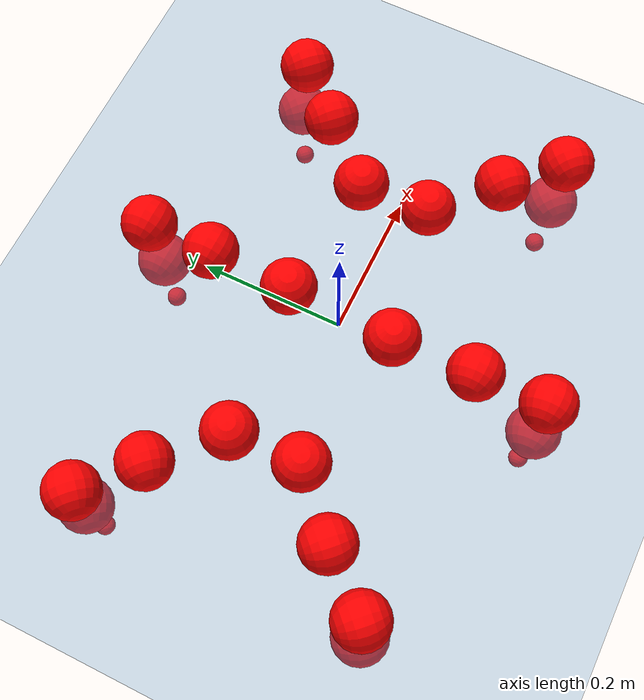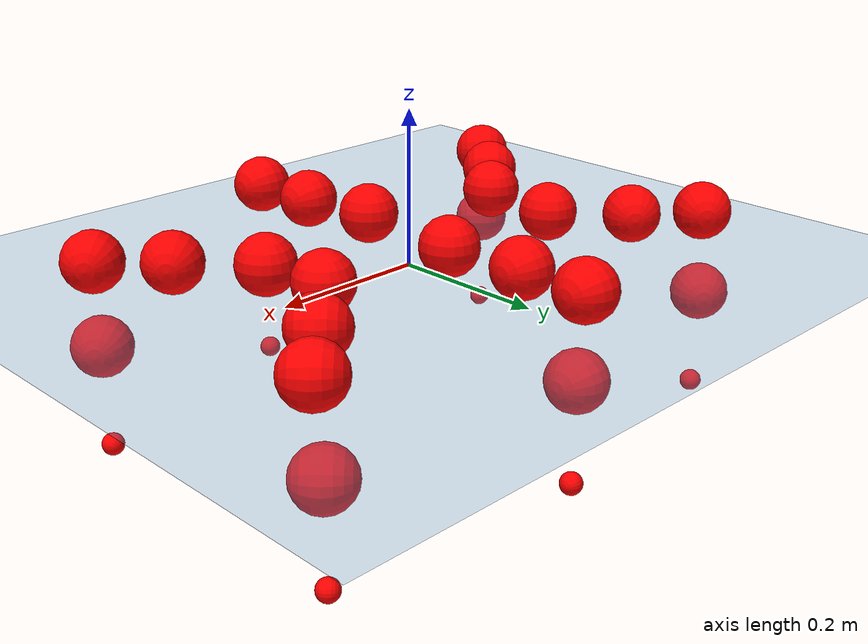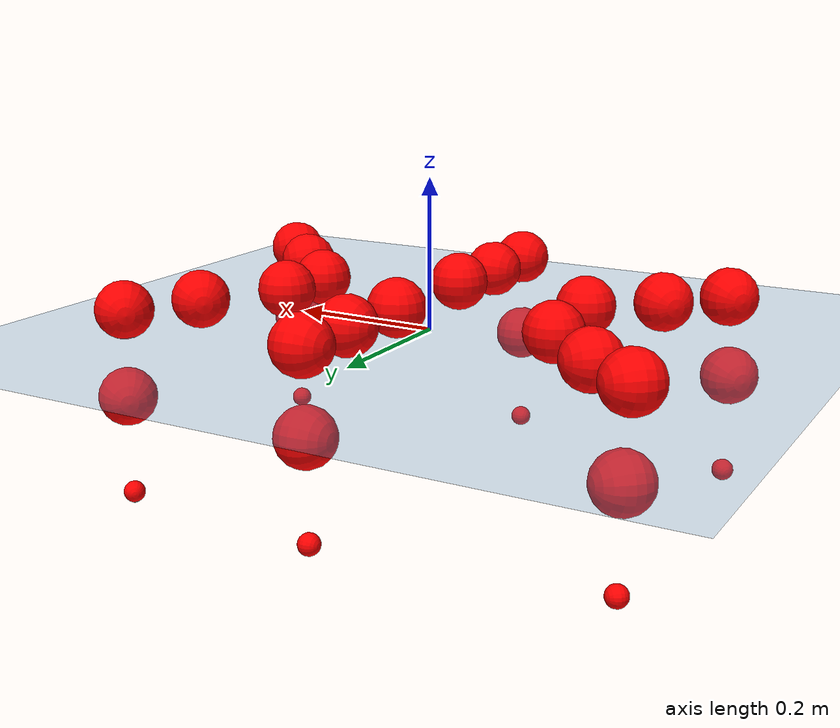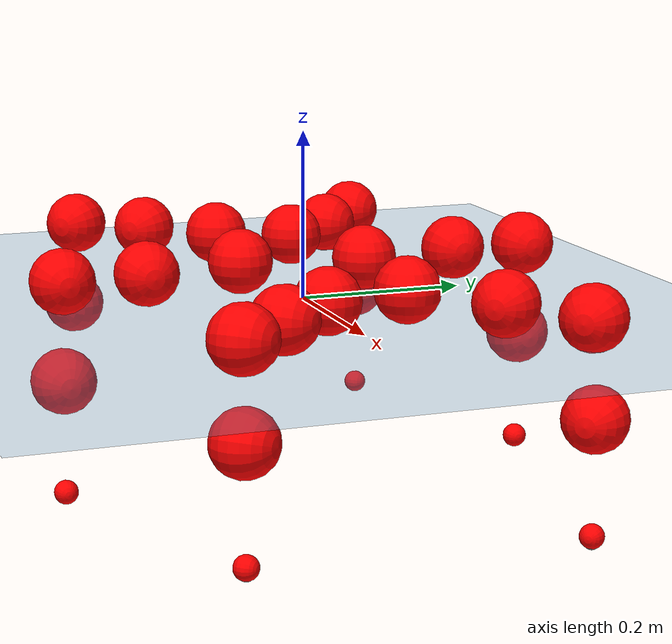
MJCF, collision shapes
<mujoco model="Golem">
  <compiler angle="radian" assetdir="assets" balanceinertia="true" inertiafromgeom="false"/>

  <option timestep="0.005" density="1.2" viscosity="2e-05"/>

  <size nkey="1"/>

  <visual>
    <quality shadowsize="8192"/>
    <map shadowclip="0.5"/>
  </visual>

  <default>
    <default class="/">
      <joint armature="0.01" damping="0.01" frictionloss="0.01"/>
      <geom contype="0" conaffinity="0" group="1" solref="-1000 -80"/>
      <site size="0.01 0.005 0.005" group="5"/>
      <general forcelimited="true" biastype="affine" gainprm="25" biasprm="0 -25 -0.5"/>
      <default class="visual">
        <geom type="mesh" group="2"/>
      </default>
      <default class="collision">
        <geom group="3"/>
      </default>
      <default class="foot">
        <geom size="0.01 0 0" condim="6" group="4" priority="1" solimp="0.015 1 0.01"/>
      </default>
      <default class="reward_collision_sphere">
        <geom group="5" rgba="1 0 0 1"/>
      </default>
    </default>
  </default>

  <asset>
    <texture type="skybox" colorspace="auto" name="//unnamed_texture_0" builtin="gradient" rgb1="0.95 0.95 0.95" rgb2="0.95 0.95 0.95" width="100" height="600"/>
    <texture type="2d" colorspace="auto" name="texplane" builtin="checker" rgb1="0.345 0.575 0.748" rgb2="0.345 0.575 0.748" markrgb="1 1 1" width="512" height="512"/>
    <material name="MatPlane" class="/" texture="texplane" texuniform="true" texrepeat="2 2" specular="0.9"/>
    <mesh name="body" class="/" file="body.stl" scale="0.001 0.001 0.001"/>
    <mesh name="coxa" class="/" file="coxa.stl" scale="0.001 0.001 0.001"/>
    <mesh name="femur" class="/" file="femur.stl" scale="0.001 0.001 0.001"/>
    <mesh name="tibia" class="/" file="tibia.stl" scale="0.001 0.001 0.001"/>
    <mesh name="tarsus" class="/" file="tarsus.stl" scale="0.001 0.001 0.001"/>
  </asset>

  <worldbody>
    <geom name="floor" class="/" size="100 100 0.125" type="plane" group="0" material="MatPlane"/>
    <light name="toplight_shadow" class="/" pos="0 0 5" dir="0.0990148 0.0990148 -0.990148" type="directional" ambient="0.04 0.04 0.04" diffuse="0.55 0.55 0.55" specular="0.12 0.12 0.12"/>
    <light name="toplight_fill" class="/" pos="0 0 5" dir="0.0990148 0.0990148 -0.990148" type="directional" castshadow="false" ambient="0.04 0.04 0.04" diffuse="0.3 0.3 0.3" specular="0.08 0.08 0.08"/>
    <body name="trunk" pos="-0.00218871 0.00210256 -0.0016017" quat="1 0.000588091 0.000101674 -0.000524031">
      <inertial pos="-0.00366346 0.00146387 -0.00714067" quat="0.999983 0.00451586 -0.000371351 -0.00372086" mass="2.86916" diaginertia="0.0251155 0.00517625 0.00193789"/>
      <joint name="//unnamed_joint_0" type="free"/>
      <geom name="//unnamed_geom_1" class="/" pos="0 0 0.0473808" quat="1 0 0 0" type="mesh" rgba="0.9 0.9 0.9 1" mesh="body"/>
      <site name="imu" class="/" pos="0.172837 0.0110844 0.105378" size="0.00959069"/>
      <camera name="track" class="/" pos="0 -1.77965 0" quat="0.707107 0.707107 0 0" mode="trackcom"/>
      <camera name="ego_camera" class="/" pos="0.162117 0 0.0740324" quat="-0.5 -0.5 0.5 0.5"/>
      <body name="coxa_RR" pos="-0.224275 -0.0744866 0.0479205" quat="0.382599 0.000170322 -2.25413e-06 -0.923914">
        <inertial pos="0.000513721 0.00140844 0.000761029" quat="0.999999 0.00103797 7.483e-05 -0.000251108" mass="0.174599" diaginertia="0.0304303 0.00574297 0.0022645"/>
        <joint name="coxa_joint_RR" class="/" pos="0 0 0" axis="-0.0130025 -0.0387728 -0.999163" range="-3.09094 3.14879" armature="0.0103124" damping="0.011909" frictionloss="0.0094123"/>
        <geom name="//unnamed_geom_2" class="/" type="mesh" rgba="0.2 0.2 0.2 1" mesh="coxa"/>
        <geom name="//unnamed_geom_3" class="reward_collision_sphere" size="0.0383627" pos="-0.0374117 0 0"/>
        <body name="femur_RR" pos="0.0687697 -0.00199164 -0.00116952" quat="0.500085 -0.499171 0.50033 0.500413">
          <inertial pos="0.00167209 0.000276562 0.00163828" quat="0.99998 0.00379393 -0.00504456 -0.00101561" mass="0.182942" diaginertia="0.029501 0.00600901 0.00233429"/>
          <joint name="femur_joint_RR" class="/" pos="0 0 0" axis="-0.0171386 0.0213637 -0.999625" range="-3.1344 3.15593" armature="0.00969778" damping="0.00611363" frictionloss="0.00946717"/>
          <geom name="//unnamed_geom_4" class="/" type="mesh" rgba="0.9 0.9 0.9 1" mesh="femur"/>
          <geom name="//unnamed_geom_5" class="reward_collision_sphere" size="0.0383627"/>
          <body name="tibia_RR" pos="0.00123471 -0.0976487 0.00796471" quat="0.000158257 1 -0.000212864 0.00023601">
            <inertial pos="-0.00214883 0.00686549 0.00189761" quat="0.99939 -0.0283517 -0.00504332 -0.0197629" mass="0.176691" diaginertia="0.0277818 0.00545528 0.00223307"/>
            <joint name="tibia_joint_RR" class="/" pos="0 0 0" axis="-0.0109345 0.00718827 0.999914" range="-3.19084 3.10791" armature="0.00900947" damping="0.00253959" frictionloss="0.00940015"/>
            <geom name="//unnamed_geom_6" class="/" type="mesh" rgba="0.2 0.2 0.2 1" mesh="tibia"/>
            <geom name="//unnamed_geom_7" class="reward_collision_sphere" size="0.0383627"/>
            <body name="tarsus_RR" pos="0.107762 0.0071609 0.00129282" quat="1 0.000664991 -0.000182225 0.000254833">
              <inertial pos="0.0779898 0.00028527 0.00276937" quat="0.503381 0.475957 0.507221 0.51264" mass="0.166683" diaginertia="0.0289039 0.00542763 0.00236181"/>
              <joint name="tarsus_joint_RR" class="/" pos="0 0 0" axis="-0.00755482 -0.00923128 0.999929" range="-3.08865 3.09728" armature="0.00901405" damping="0.0175211" frictionloss="0.00768228"/>
              <geom name="//unnamed_geom_8" class="/" type="mesh" rgba="0.9 0.9 0.9 1" mesh="tarsus"/>
              <geom name="foot_1" class="foot" size="0.00921767" pos="0.13967 0 0" quat="0 -0.707107 0 0.707107"/>
              <geom name="//unnamed_geom_10" class="reward_collision_sphere" size="0.0383627"/>
              <geom name="//unnamed_geom_11" class="reward_collision_sphere" size="0.014386" pos="0.134059 0 0"/>
              <site name="foot_1" class="foot" pos="0.13967 0 0" quat="0 -0.707107 0 0.707107" size="0.00959069"/>
            </body>
          </body>
        </body>
      </body>
      <body name="coxa_RM" pos="0.000192749 -0.117155 0.0513762" quat="0.708135 -0.00366735 0.00125711 -0.706066">
        <inertial pos="-0.00292918 0.00112514 0.00497436" quat="1 0.000174023 -0.000713905 -7.89004e-05" mass="0.1749" diaginertia="0.0312183 0.00531551 0.00218595"/>
        <joint name="coxa_joint_RM" class="/" pos="0 0 0" axis="0.00658543 -0.00270426 -0.999975" stiffness="4.68545e-05" range="-3.09678 3.13693" armature="0.0078406" damping="0.0245292" frictionloss="0.00983671"/>
        <geom name="//unnamed_geom_12" class="/" type="mesh" rgba="0.2 0.2 0.2 1" mesh="coxa"/>
        <geom name="//unnamed_geom_13" class="reward_collision_sphere" size="0.0383627" pos="-0.0374117 0 0"/>
        <body name="femur_RM" pos="0.0778792 0.00508112 -0.00572145" quat="0.500399 -0.500512 0.498828 0.500259">
          <inertial pos="-0.00677874 0.00178889 0.000482258" quat="0.999993 0.00179606 0.00200124 -0.00267937" mass="0.188952" diaginertia="0.034684 0.00595182 0.0025887"/>
          <joint name="femur_joint_RM" class="/" pos="0 0 0" axis="-0.0139583 0.00877283 -0.999864" range="-3.13204 3.25986" armature="0.0103651" damping="0" frictionloss="0.0101777"/>
          <geom name="//unnamed_geom_14" class="/" type="mesh" rgba="0.9 0.9 0.9 1" mesh="femur"/>
          <geom name="//unnamed_geom_15" class="reward_collision_sphere" size="0.0383627"/>
          <body name="tibia_RM" pos="0.00187509 -0.0998561 0.00167502" quat="0.000384891 0.999999 -0.000917949 -0.00010152">
            <inertial pos="0.00201835 -0.00805238 0.0022523" quat="0.99996 0.00447629 -0.00342655 -0.00697288" mass="0.18434" diaginertia="0.0307994 0.0056923 0.00221506"/>
            <joint name="tibia_joint_RM" class="/" pos="0 0 0" axis="0.00543589 -0.0051216 0.999972" range="-3.10793 3.09524" armature="0.00905886" damping="0" frictionloss="0.00924014"/>
            <geom name="//unnamed_geom_16" class="/" type="mesh" rgba="0.2 0.2 0.2 1" mesh="tibia"/>
            <geom name="//unnamed_geom_17" class="reward_collision_sphere" size="0.0383627"/>
            <body name="tarsus_RM" pos="0.117447 0.00068041 0.000367137" quat="1 0.000458415 0.000401569 -0.000352696">
              <inertial pos="0.0697075 -0.00179355 0.00139029" quat="0.505743 0.495116 0.49765 0.501426" mass="0.158111" diaginertia="0.0298047 0.00540194 0.00197829"/>
              <joint name="tarsus_joint_RM" class="/" pos="0 0 0" axis="-0.00508983 -0.00484462 0.999975" range="-3.0649 3.22852" armature="0.00967592" damping="0.0107149" frictionloss="0.0113901"/>
              <geom name="//unnamed_geom_18" class="/" type="mesh" rgba="0.9 0.9 0.9 1" mesh="tarsus"/>
              <geom name="foot_2" class="foot" size="0.00878147" pos="0.13967 0 0" quat="0 -0.707107 0 0.707107"/>
              <geom name="//unnamed_geom_20" class="reward_collision_sphere" size="0.0383627"/>
              <geom name="//unnamed_geom_21" class="reward_collision_sphere" size="0.014386" pos="0.134059 0 0"/>
              <site name="foot_2" class="foot" pos="0.13967 0 0" quat="0 -0.707107 0 0.707107" size="0.00959069"/>
            </body>
          </body>
        </body>
      </body>
      <body name="coxa_RF" pos="0.222722 -0.0694274 0.0424469" quat="0.923808 0.000199228 0.000208078 -0.382855">
        <inertial pos="-0.00175121 0.00629165 -0.00366993" quat="0.999547 0.0269718 -0.00156098 -0.0132414" mass="0.192793" diaginertia="0.031164 0.00578887 0.00230771"/>
        <joint name="coxa_joint_RF" class="/" pos="0 0 0" axis="0.00638249 -0.0229038 -0.999717" stiffness="0.0114822" range="-3.27126 3.11826" armature="0.0119133" damping="0.0145727" frictionloss="0.00898758"/>
        <geom name="//unnamed_geom_22" class="/" type="mesh" rgba="0.2 0.2 0.2 1" mesh="coxa"/>
        <geom name="//unnamed_geom_23" class="reward_collision_sphere" size="0.0383627" pos="-0.0374117 0 0"/>
        <body name="femur_RF" pos="0.0719298 0.000865902 0.00251032" quat="0.500211 -0.499947 0.499732 0.50011">
          <inertial pos="0.00330617 -0.00614803 0.00196079" quat="0.999981 0.00338776 -0.00095221 0.00515735" mass="0.172541" diaginertia="0.02765 0.00511702 0.00199945"/>
          <joint name="femur_joint_RF" class="/" pos="0 0 0" axis="0.00870588 0.00232831 -0.999959" range="-3.18068 3.15237" armature="0.00923572" damping="0.00370597" frictionloss="0.00990768"/>
          <geom name="//unnamed_geom_24" class="/" type="mesh" rgba="0.9 0.9 0.9 1" mesh="femur"/>
          <geom name="//unnamed_geom_25" class="reward_collision_sphere" size="0.0383627"/>
          <body name="tibia_RF" pos="-0.00047851 -0.0946465 -0.000464618" quat="-5.53364e-05 1 -4.53719e-05 5.5119e-05">
            <inertial pos="-0.000317093 0.00013603 0.00752026" quat="0.999678 0.00320112 -0.0103529 0.022943" mass="0.178669" diaginertia="0.0291327 0.00589865 0.0020807"/>
            <joint name="tibia_joint_RF" class="/" pos="0 0 0" axis="7.88299e-05 -4.67844e-05 1" range="-3.16692 3.11379" armature="0.0101092" damping="0.020068" frictionloss="0.00890098"/>
            <geom name="//unnamed_geom_26" class="/" type="mesh" rgba="0.2 0.2 0.2 1" mesh="tibia"/>
            <geom name="//unnamed_geom_27" class="reward_collision_sphere" size="0.0383627"/>
            <body name="tarsus_RF" pos="0.109246 -0.000857645 0.000178768" quat="0.999998 0.00131958 0.00100453 -0.000727967">
              <inertial pos="0.0752241 0.00185574 0.000909298" quat="0.49845 0.500276 0.495923 0.505303" mass="0.172508" diaginertia="0.0290323 0.00583452 0.00236794"/>
              <joint name="tarsus_joint_RF" class="/" pos="0 0 0" axis="-0.00815452 0.00169786 0.999965" stiffness="0.0276414" range="-3.21941 3.14212" armature="0.0108037" damping="0.0332153" frictionloss="0.0105914"/>
              <geom name="//unnamed_geom_28" class="/" type="mesh" rgba="0.9 0.9 0.9 1" mesh="tarsus"/>
              <geom name="foot_3" class="foot" size="0.00955579" pos="0.13967 0 0" quat="0 -0.707107 0 0.707107"/>
              <geom name="//unnamed_geom_30" class="reward_collision_sphere" size="0.0383627"/>
              <geom name="//unnamed_geom_31" class="reward_collision_sphere" size="0.014386" pos="0.134059 0 0"/>
              <site name="foot_3" class="foot" pos="0.13967 0 0" quat="0 -0.707107 0 0.707107" size="0.00959069"/>
            </body>
          </body>
        </body>
      </body>
      <body name="coxa_LR" pos="-0.225749 0.079796 0.038778" quat="0.383033 6.25717e-05 -0.000145555 0.923735">
        <inertial pos="0.00326687 0.00384848 0.000111869" quat="0.999835 -0.00519358 -0.0155491 0.00777347" mass="0.188521" diaginertia="0.0282982 0.00604195 0.00253715"/>
        <joint name="coxa_joint_LR" class="/" pos="0 0 0" axis="0.00164466 -0.00168541 -0.999997" range="-3.10902 3.13067" armature="0.00962601" damping="0" frictionloss="0.0105008"/>
        <geom name="//unnamed_geom_32" class="/" type="mesh" rgba="0.2 0.2 0.2 1" mesh="coxa"/>
        <geom name="//unnamed_geom_33" class="reward_collision_sphere" size="0.0383627" pos="-0.0374117 0 0"/>
        <body name="femur_LR" pos="0.0739982 0.00254111 -0.00336522" quat="0.500195 -0.500347 0.500224 0.499233">
          <inertial pos="0.00194046 0.00824116 0.00163995" quat="1 -0.000185982 -0.000444416 -0.000351247" mass="0.175638" diaginertia="0.0329696 0.00542377 0.00244763"/>
          <joint name="femur_joint_LR" class="/" pos="0 0 0" axis="0.00597159 0.0046712 0.999971" range="-3.2515 3.14802" armature="0.00860345" damping="0.0503616" frictionloss="0.00950798"/>
          <geom name="//unnamed_geom_34" class="/" type="mesh" rgba="0.9 0.9 0.9 1" mesh="femur"/>
          <geom name="//unnamed_geom_35" class="reward_collision_sphere" size="0.0383627"/>
          <body name="tibia_LR" pos="-0.00200897 -0.0945991 0.00760125" quat="0.000328641 1 0.000509703 -0.000278723">
            <inertial pos="-0.00157067 0.00381234 0.00184474" quat="0.999676 -0.00452797 0.0047473 0.0245863" mass="0.185527" diaginertia="0.032479 0.00583212 0.00228442"/>
            <joint name="tibia_joint_LR" class="/" pos="0 0 0" axis="0.00400874 -0.00334515 -0.999986" stiffness="0.0185636" range="-3.16565 3.02277" armature="0.00999405" damping="0.00943871" frictionloss="0.00964816"/>
            <geom name="//unnamed_geom_36" class="/" type="mesh" rgba="0.2 0.2 0.2 1" mesh="tibia"/>
            <geom name="//unnamed_geom_37" class="reward_collision_sphere" size="0.0383627"/>
            <body name="tarsus_LR" pos="0.112051 0.00367263 0.00775603" quat="0.999999 0.000275418 -0.000971996 -0.00125922">
              <inertial pos="0.0712113 0.00685896 0.00564463" quat="0.499801 0.499918 0.499816 0.500464" mass="0.180143" diaginertia="0.0302509 0.00566635 0.00238241"/>
              <joint name="tarsus_joint_LR" class="/" pos="0 0 0" axis="0.0117182 -0.0255622 -0.999605" stiffness="0.0287412" range="-3.13773 3.17406" armature="0.0110179" damping="0.0303922" frictionloss="0.0104445"/>
              <geom name="//unnamed_geom_38" class="/" type="mesh" rgba="0.9 0.9 0.9 1" mesh="tarsus"/>
              <geom name="foot_4" class="foot" size="0.00672782" pos="0.13967 0 0" quat="0.707107 0 -0.707107 0"/>
              <geom name="//unnamed_geom_40" class="reward_collision_sphere" size="0.0383627"/>
              <geom name="//unnamed_geom_41" class="reward_collision_sphere" size="0.014386" pos="0.134059 0 0"/>
              <site name="foot_4" class="foot" pos="0.13967 0 0" quat="0.707107 0 -0.707107 0" size="0.00959069"/>
            </body>
          </body>
        </body>
      </body>
      <body name="coxa_LM" pos="0.00746434 0.110756 0.0471996" quat="0.706673 0.000307081 1.41077e-05 0.70754">
        <inertial pos="-0.00028931 0.0031281 0.000665772" quat="0.999663 0.00784798 -0.0242271 0.00502294" mass="0.168755" diaginertia="0.0277485 0.0050997 0.00200422"/>
        <joint name="coxa_joint_LM" class="/" pos="0 0 0" axis="0.0339526 -0.0186645 -0.999249" stiffness="0.000108751" range="-3.10954 3.17329" armature="0.010035" damping="0.00934015" frictionloss="0.00866222"/>
        <geom name="//unnamed_geom_42" class="/" type="mesh" rgba="0.2 0.2 0.2 1" mesh="coxa"/>
        <geom name="//unnamed_geom_43" class="reward_collision_sphere" size="0.0383627" pos="-0.0374117 0 0"/>
        <body name="femur_LM" pos="0.0784745 0.000368865 0.00351773" quat="0.499931 -0.500057 0.500016 0.499995">
          <inertial pos="-0.00309183 -0.00251011 -0.00159975" quat="0.999838 0.00745168 -0.0156825 -0.00464061" mass="0.168019" diaginertia="0.0308417 0.00486274 0.00209183"/>
          <joint name="femur_joint_LM" class="/" pos="0 0 0" axis="-0.000609423 0.00518981 0.999986" stiffness="0.00647913" range="-3.11284 3.18229" armature="0.00828189" damping="0" frictionloss="0.0109435"/>
          <geom name="//unnamed_geom_44" class="/" type="mesh" rgba="0.9 0.9 0.9 1" mesh="femur"/>
          <geom name="//unnamed_geom_45" class="reward_collision_sphere" size="0.0383627"/>
          <body name="tibia_LM" pos="0.000558956 -0.0932855 -2.73084e-05" quat="-0.00171316 0.999997 0.00131455 0.000669103">
            <inertial pos="-0.00219235 0.00151747 0.00500812" quat="0.999606 -0.0219309 -0.00199365 0.0173909" mass="0.167468" diaginertia="0.0287091 0.00492641 0.00212415"/>
            <joint name="tibia_joint_LM" class="/" pos="0 0 0" axis="-0.00353195 -0.0047994 -0.999982" stiffness="0.0313261" range="-3.13829 3.1356" armature="0.0096801" damping="0.0038567" frictionloss="0.0116077"/>
            <geom name="//unnamed_geom_46" class="/" type="mesh" rgba="0.2 0.2 0.2 1" mesh="tibia"/>
            <geom name="//unnamed_geom_47" class="reward_collision_sphere" size="0.0383627"/>
            <body name="tarsus_LM" pos="0.111805 -0.00457839 0.00167677" quat="0.999997 -0.00250765 6.42512e-05 0.00053215">
              <inertial pos="0.0742568 0.00164792 -0.00115287" quat="0.495447 0.524132 0.487433 0.492166" mass="0.160314" diaginertia="0.0264516 0.00539859 0.00216352"/>
              <joint name="tarsus_joint_LM" class="/" pos="0 0 0" axis="-0.011549 0.0355703 -0.9993" range="-3.0951 3.09768" armature="0.00857713" damping="0.0317843" frictionloss="0.00693596"/>
              <geom name="//unnamed_geom_48" class="/" type="mesh" rgba="0.9 0.9 0.9 1" mesh="tarsus"/>
              <geom name="foot_5" class="foot" size="0.00920567" pos="0.13967 0 0" quat="0.707107 0 -0.707107 0"/>
              <geom name="//unnamed_geom_50" class="reward_collision_sphere" size="0.0383627"/>
              <geom name="//unnamed_geom_51" class="reward_collision_sphere" size="0.014386" pos="0.134059 0 0"/>
              <site name="foot_5" class="foot" pos="0.13967 0 0" quat="0.707107 0 -0.707107 0" size="0.00959069"/>
            </body>
          </body>
        </body>
      </body>
      <body name="coxa_LF" pos="0.215971 0.0804738 0.0462208" quat="0.923658 0.000787033 -6.10915e-05 0.383217">
        <inertial pos="0.000351688 -0.00036827 -0.00498689" quat="0.999851 -0.0128726 0.0110827 0.00318484" mass="0.177293" diaginertia="0.0316246 0.00505707 0.00224317"/>
        <joint name="coxa_joint_LF" class="/" pos="0 0 0" axis="-0.0179419 -0.0113946 -0.999774" range="-3.18236 3.15176" armature="0.0117644" damping="0.00497825" frictionloss="0.00572007"/>
        <geom name="//unnamed_geom_52" class="/" type="mesh" rgba="0.2 0.2 0.2 1" mesh="coxa"/>
        <geom name="//unnamed_geom_53" class="reward_collision_sphere" size="0.0383627" pos="-0.0374117 0 0"/>
        <body name="femur_LF" pos="0.0773179 0.00363001 -0.00540558" quat="0.500161 -0.500105 0.499099 0.500634">
          <inertial pos="0.0077299 -0.000659679 -0.00817605" quat="0.999945 -0.0103071 -0.00146409 0.00143425" mass="0.181542" diaginertia="0.0285504 0.00586051 0.00226765"/>
          <joint name="femur_joint_LF" class="/" pos="0 0 0" axis="-0.0021108 -0.00410432 0.999989" stiffness="0.0017422" range="-3.10577 3.10129" armature="0.00857247" damping="0.00390757" frictionloss="0.0103953"/>
          <geom name="//unnamed_geom_54" class="/" type="mesh" rgba="0.9 0.9 0.9 1" mesh="femur"/>
          <geom name="//unnamed_geom_55" class="reward_collision_sphere" size="0.0383627"/>
          <body name="tibia_LF" pos="0.00720294 -0.0986312 0.00276333" quat="-0.000725063 1 -0.000418616 0.000412869">
            <inertial pos="0.000327029 0.00758347 -0.00369481" quat="1 -0.000110762 1.27133e-05 -0.000322428" mass="0.195458" diaginertia="0.0362657 0.00619459 0.00248122"/>
            <joint name="tibia_joint_LF" class="/" pos="0 0 0" axis="0.0115897 -0.00519919 -0.999919" range="-3.15628 3.18338" armature="0.00808665" damping="0.0179946" frictionloss="0.0101508"/>
            <geom name="//unnamed_geom_56" class="/" type="mesh" rgba="0.2 0.2 0.2 1" mesh="tibia"/>
            <geom name="//unnamed_geom_57" class="reward_collision_sphere" size="0.0383627"/>
            <body name="tarsus_LF" pos="0.114931 0.00265429 -0.00695034" quat="0.999999 -0.000257341 -0.000917641 0.000444412">
              <inertial pos="0.0772743 -0.00125277 -0.00241318" quat="0.497081 0.495211 0.509691 0.497886" mass="0.20244" diaginertia="0.0332018 0.00643393 0.00243318"/>
              <joint name="tarsus_joint_LF" class="/" pos="0 0 0" axis="-0.000702104 -3.07758e-05 -1" range="-3.10377 3.151" armature="0.00750754" damping="0.0337404" frictionloss="0.0130876"/>
              <geom name="//unnamed_geom_58" class="/" type="mesh" rgba="0.9 0.9 0.9 1" mesh="tarsus"/>
              <geom name="foot_6" class="foot" size="0.00980354" pos="0.13967 0 0" quat="0.707107 0 -0.707107 0"/>
              <geom name="//unnamed_geom_60" class="reward_collision_sphere" size="0.0383627"/>
              <geom name="//unnamed_geom_61" class="reward_collision_sphere" size="0.014386" pos="0.134059 0 0"/>
              <site name="foot_6" class="foot" pos="0.13967 0 0" quat="0.707107 0 -0.707107 0" size="0.00959069"/>
            </body>
          </body>
        </body>
      </body>
    </body>
  </worldbody>

  <contact>
    <pair class="/" geom1="floor" geom2="foot_1" name="//unnamed_contact_0"/>
    <pair class="/" geom1="floor" geom2="foot_2" name="//unnamed_contact_1"/>
    <pair class="/" geom1="floor" geom2="foot_3" name="//unnamed_contact_2"/>
    <pair class="/" geom1="floor" geom2="foot_4" name="//unnamed_contact_3"/>
    <pair class="/" geom1="floor" geom2="foot_5" name="//unnamed_contact_4"/>
    <pair class="/" geom1="floor" geom2="foot_6" name="//unnamed_contact_5"/>
  </contact>

  <actuator>
    <general name="coxa_joint_RR" class="/" joint="coxa_joint_RR" forcerange="-6.83788 6.83788" gainprm="20.7292" biasprm="0 -20.7292 -0.465067"/>
    <general name="femur_joint_RR" class="/" joint="femur_joint_RR" forcerange="-6.42281 6.42281" gainprm="20.7292" biasprm="0 -20.7292 -0.465067"/>
    <general name="tibia_joint_RR" class="/" joint="tibia_joint_RR" forcerange="-6.67301 6.67301" gainprm="20.7292" biasprm="0 -20.7292 -0.465067"/>
    <general name="tarsus_joint_RR" class="/" joint="tarsus_joint_RR" forcerange="-5.61975 5.61975" gainprm="20.7292" biasprm="0 -20.7292 -0.465067"/>
    <general name="coxa_joint_RM" class="/" joint="coxa_joint_RM" forcerange="-7.58631 7.58631" gainprm="20.7292" biasprm="0 -20.7292 -0.465067"/>
    <general name="femur_joint_RM" class="/" joint="femur_joint_RM" forcerange="-6.90889 6.90889" gainprm="20.7292" biasprm="0 -20.7292 -0.465067"/>
    <general name="tibia_joint_RM" class="/" joint="tibia_joint_RM" forcerange="-7.0073 7.0073" gainprm="20.7292" biasprm="0 -20.7292 -0.465067"/>
    <general name="tarsus_joint_RM" class="/" joint="tarsus_joint_RM" forcerange="-5.19742 5.19742" gainprm="20.7292" biasprm="0 -20.7292 -0.465067"/>
    <general name="coxa_joint_RF" class="/" joint="coxa_joint_RF" forcerange="-6.68395 6.68395" gainprm="20.7292" biasprm="0 -20.7292 -0.465067"/>
    <general name="femur_joint_RF" class="/" joint="femur_joint_RF" forcerange="-8.66052 8.66052" gainprm="20.7292" biasprm="0 -20.7292 -0.465067"/>
    <general name="tibia_joint_RF" class="/" joint="tibia_joint_RF" forcerange="-6.39363 6.39363" gainprm="20.7292" biasprm="0 -20.7292 -0.465067"/>
    <general name="tarsus_joint_RF" class="/" joint="tarsus_joint_RF" forcerange="-7.74737 7.74737" gainprm="20.7292" biasprm="0 -20.7292 -0.465067"/>
    <general name="coxa_joint_LR" class="/" joint="coxa_joint_LR" forcerange="-7.46665 7.46665" gainprm="20.7292" biasprm="0 -20.7292 -0.465067"/>
    <general name="femur_joint_LR" class="/" joint="femur_joint_LR" forcerange="-7.40364 7.40364" gainprm="20.7292" biasprm="0 -20.7292 -0.465067"/>
    <general name="tibia_joint_LR" class="/" joint="tibia_joint_LR" forcerange="-6.94294 6.94294" gainprm="20.7292" biasprm="0 -20.7292 -0.465067"/>
    <general name="tarsus_joint_LR" class="/" joint="tarsus_joint_LR" forcerange="-7.48388 7.48388" gainprm="20.7292" biasprm="0 -20.7292 -0.465067"/>
    <general name="coxa_joint_LM" class="/" joint="coxa_joint_LM" forcerange="-6.44649 6.44649" gainprm="20.7292" biasprm="0 -20.7292 -0.465067"/>
    <general name="femur_joint_LM" class="/" joint="femur_joint_LM" forcerange="-7.60417 7.60417" gainprm="20.7292" biasprm="0 -20.7292 -0.465067"/>
    <general name="tibia_joint_LM" class="/" joint="tibia_joint_LM" forcerange="-6.90674 6.90674" gainprm="20.7292" biasprm="0 -20.7292 -0.465067"/>
    <general name="tarsus_joint_LM" class="/" joint="tarsus_joint_LM" forcerange="-6.48278 6.48278" gainprm="20.7292" biasprm="0 -20.7292 -0.465067"/>
    <general name="coxa_joint_LF" class="/" joint="coxa_joint_LF" forcerange="-8.34099 8.34099" gainprm="20.7292" biasprm="0 -20.7292 -0.465067"/>
    <general name="femur_joint_LF" class="/" joint="femur_joint_LF" forcerange="-7.47214 7.47214" gainprm="20.7292" biasprm="0 -20.7292 -0.465067"/>
    <general name="tibia_joint_LF" class="/" joint="tibia_joint_LF" forcerange="-6.54712 6.54712" gainprm="20.7292" biasprm="0 -20.7292 -0.465067"/>
    <general name="tarsus_joint_LF" class="/" joint="tarsus_joint_LF" forcerange="-6.83256 6.83256" gainprm="20.7292" biasprm="0 -20.7292 -0.465067"/>
  </actuator>

  <sensor>
    <gyro site="imu" name="imu_angular_velocity"/>
    <velocimeter site="imu" name="imu_linear_velocity"/>
    <framelinvel objtype="site" objname="foot_1" name="foot_1_global_linear_velocity"/>
    <framelinvel objtype="site" objname="foot_2" name="foot_2_global_linear_velocity"/>
    <framelinvel objtype="site" objname="foot_3" name="foot_3_global_linear_velocity"/>
    <framelinvel objtype="site" objname="foot_4" name="foot_4_global_linear_velocity"/>
    <framelinvel objtype="site" objname="foot_5" name="foot_5_global_linear_velocity"/>
    <framelinvel objtype="site" objname="foot_6" name="foot_6_global_linear_velocity"/>
  </sensor>

  <keyframe>
    <key name="home" qpos="0 0 0.1457 1 0 0 0 0 0 0 0 0 0 0 0 0 0 0 0 0 0 0 0 0 0 0 0 0 0 0 0"/>
  </keyframe>
</mujoco>
